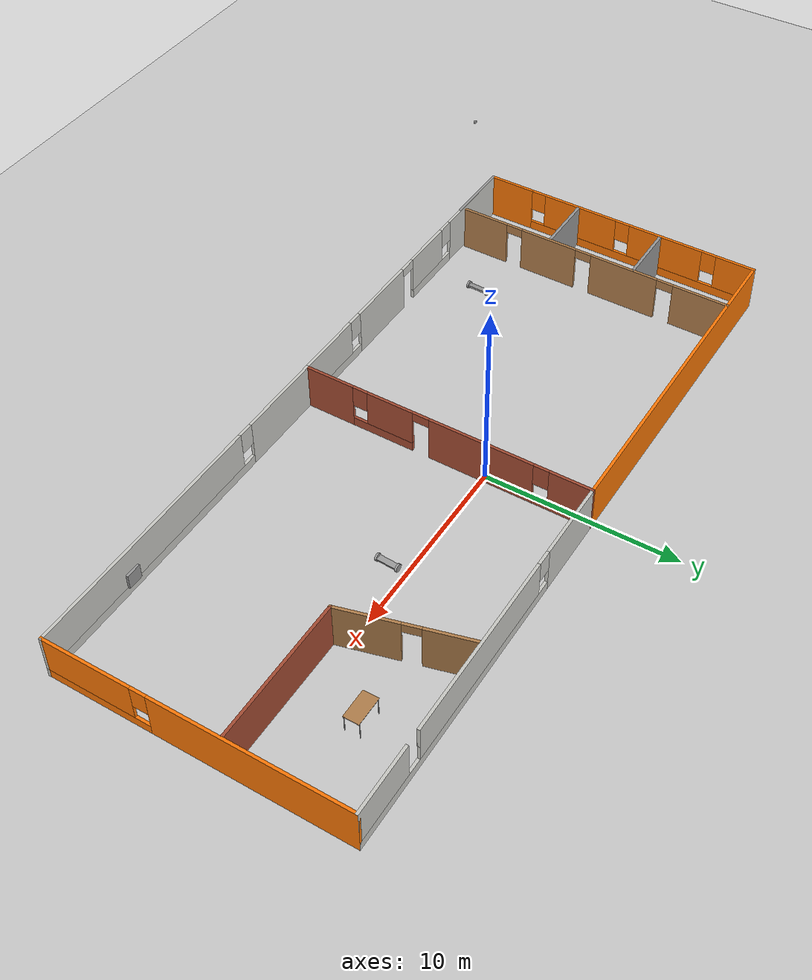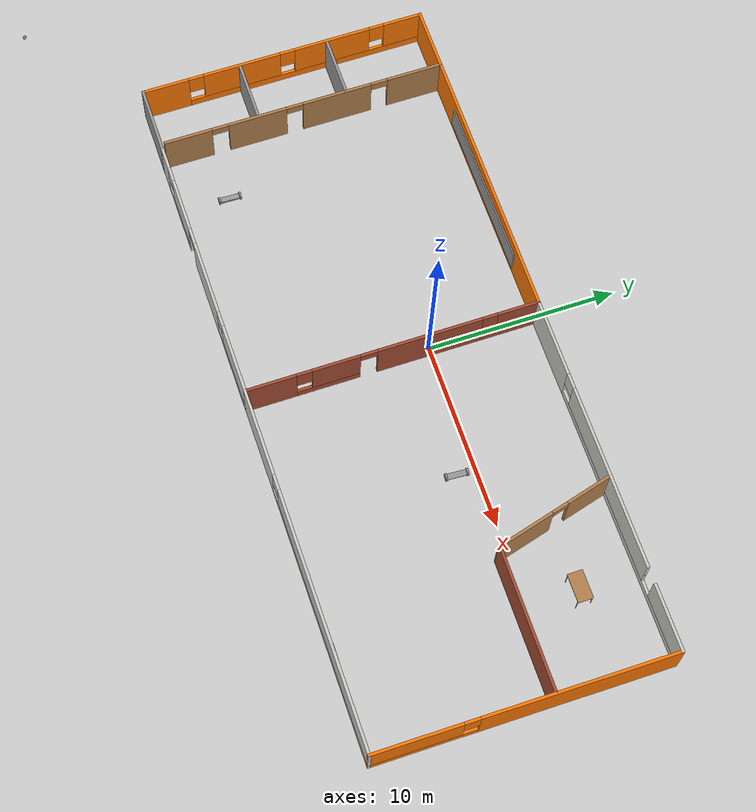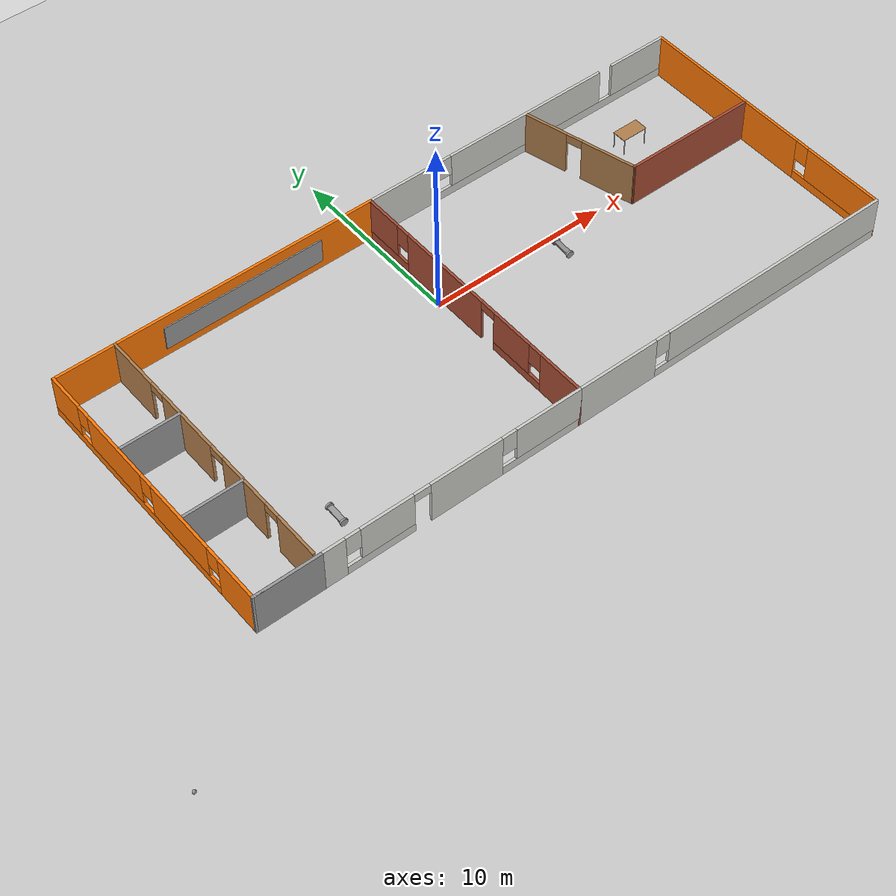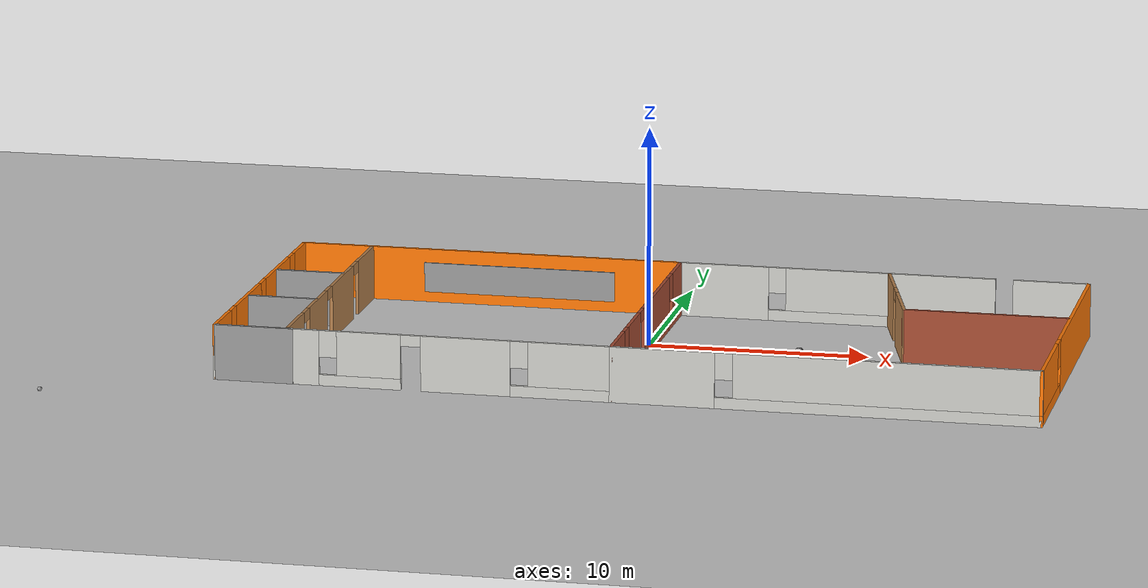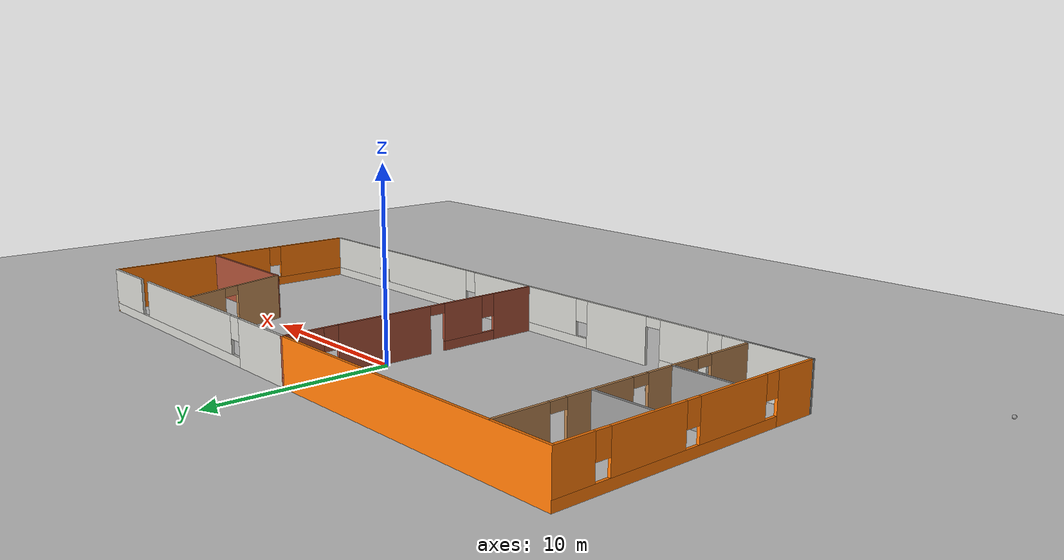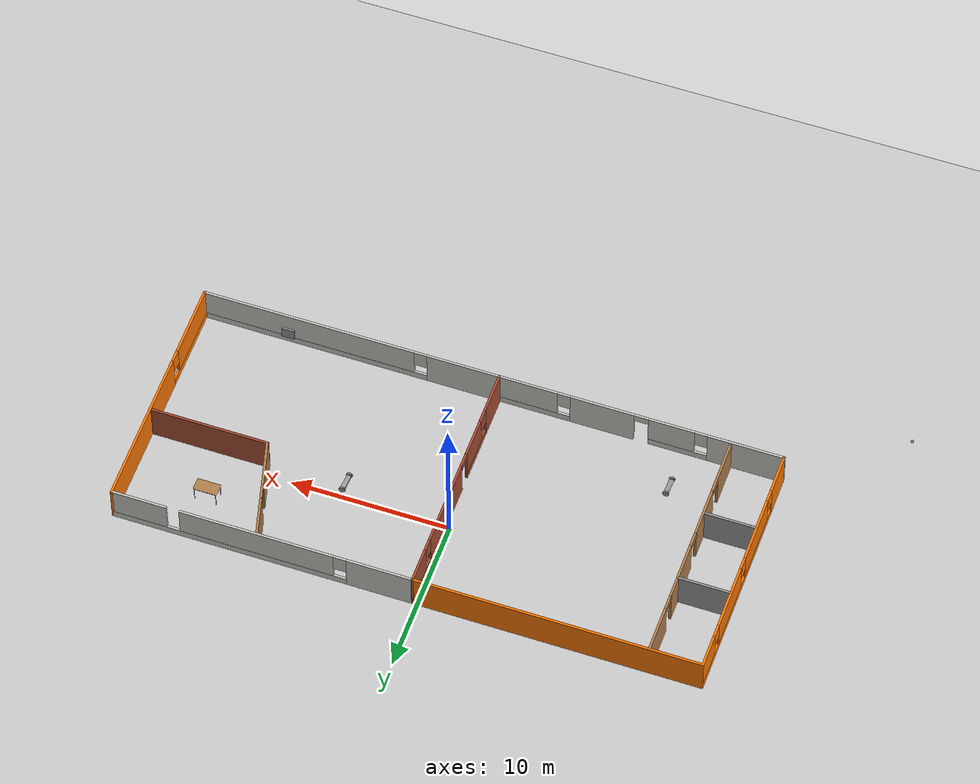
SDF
<sdf version="1.7">
 <world name="AvanadeOffice.world">
  <light name="sun" type="directional">
   <pose>0 0 10 0 -0 0</pose>
   <diffuse>0.8 0.8 0.8 1</diffuse>
   <specular>0.2 0.2 0.2 1</specular>
   <attenuation>
    <range>1000</range>
    <constant>0.9</constant>
    <linear>0.01</linear>
    <quadratic>0.001</quadratic>
   </attenuation>
   <direction>-0.5 0.1 -0.9</direction>
   <spot><inner_angle>0</inner_angle><outer_angle>0</outer_angle><falloff>0</falloff></spot>
  </light>
  <model name="ground_plane">
   <static>1</static>
   <link name="link">
    <collision name="collision">
     <geometry><plane><normal>0 0 1</normal><size>100 100</size></plane></geometry>
     <surface>
      <contact><collide_bitmask>65535</collide_bitmask></contact>
      <friction><ode><mu>100</mu><mu2>50</mu2></ode></friction>
     </surface>
    </collision>
    <visual name="visual">
     <cast_shadows>0</cast_shadows>
     <geometry><plane><normal>0 0 1</normal><size>100 100</size></plane></geometry>
     <material>
      <script><uri>file://media/materials/scripts/gazebo.material</uri><name>Gazebo/Grey</name></script>
     </material>
    </visual>
   </link>
  </model>
  <gravity>0 0 -9.8</gravity>
  <magnetic_field>6e-06 2.3e-05 -4.2e-05</magnetic_field>
  <atmosphere type="adiabatic"/>
  <physics type="ode">
   <max_step_size>0.001</max_step_size>
   <real_time_factor>1</real_time_factor>
   <real_time_update_rate>1000</real_time_update_rate>
  </physics>
  <scene><ambient>0.4 0.4 0.4 1</ambient><background>0.7 0.7 0.7 1</background><shadows>1</shadows></scene>
  <spherical_coordinates>
   <surface_model>EARTH_WGS84</surface_model>
   <latitude_deg>0</latitude_deg>
   <longitude_deg>0</longitude_deg>
   <elevation>0</elevation>
   <heading_deg>0</heading_deg>
  </spherical_coordinates>
  <model name="AvanadeOffice">
   <pose>0.7974 -2.0907 0 0 -0 0</pose>
   <link name="Wall_0">
    <pose>-18.3499 0.00463 0 0 -0 1.5708</pose>
    <visual name="Wall_0_Visual_0">
     <pose>-6.47246 0 1.25 0 -0 0</pose>
     <geometry><box><size>2.55507 0.15 2.5</size></box></geometry>
     <material>
      <script><uri>file://media/materials/scripts/gazebo.material</uri><name>Gazebo/Grey</name></script>
      <ambient>0.996078 0.47451 0.0196078 1</ambient>
     </material>
     <meta><layer>0</layer></meta>
    </visual>
    <collision name="Wall_0_Collision_0">
     <geometry><box><size>2.55507 0.15 2.5</size></box></geometry>
     <pose>-6.47246 0 1.25 0 -0 0</pose>
    </collision>
    <visual name="Wall_0_Visual_1">
     <pose>1.27754 0 0.25 0 -0 0</pose>
     <geometry><box><size>12.9449 0.15 0.5</size></box></geometry>
     <material>
      <script><uri>file://media/materials/scripts/gazebo.material</uri><name>Gazebo/Grey</name></script>
      <ambient>0.996078 0.47451 0.0196078 1</ambient>
     </material>
     <meta><layer>0</layer></meta>
    </visual>
    <collision name="Wall_0_Collision_1">
     <geometry><box><size>12.9449 0.15 0.5</size></box></geometry>
     <pose>1.27754 0 0.25 0 -0 0</pose>
    </collision>
    <visual name="Wall_0_Visual_2">
     <pose>-2.28031 0 1.5 0 -0 0</pose>
     <geometry><box><size>4.22924 0.15 2</size></box></geometry>
     <material>
      <script><uri>file://media/materials/scripts/gazebo.material</uri><name>Gazebo/Grey</name></script>
      <ambient>0.996078 0.47451 0.0196078 1</ambient>
     </material>
     <meta><layer>0</layer></meta>
    </visual>
    <collision name="Wall_0_Collision_2">
     <geometry><box><size>4.22924 0.15 2</size></box></geometry>
     <pose>-2.28031 0 1.5 0 -0 0</pose>
    </collision>
    <visual name="Wall_0_Visual_3">
     <pose>2.72217 0 1.5 0 -0 0</pose>
     <geometry><box><size>4.17573 0.15 2</size></box></geometry>
     <material>
      <script><uri>file://media/materials/scripts/gazebo.material</uri><name>Gazebo/Grey</name></script>
      <ambient>0.996078 0.47451 0.0196078 1</ambient>
     </material>
     <meta><layer>0</layer></meta>
    </visual>
    <collision name="Wall_0_Collision_3">
     <geometry><box><size>4.17573 0.15 2</size></box></geometry>
     <pose>2.72217 0 1.5 0 -0 0</pose>
    </collision>
    <visual name="Wall_0_Visual_4">
     <pose>6.68002 0 1.5 0 -0 0</pose>
     <geometry><box><size>2.13996 0.15 2</size></box></geometry>
     <material>
      <script><uri>file://media/materials/scripts/gazebo.material</uri><name>Gazebo/Grey</name></script>
      <ambient>0.996078 0.47451 0.0196078 1</ambient>
     </material>
     <meta><layer>0</layer></meta>
    </visual>
    <collision name="Wall_0_Collision_4">
     <geometry><box><size>2.13996 0.15 2</size></box></geometry>
     <pose>6.68002 0 1.5 0 -0 0</pose>
    </collision>
    <visual name="Wall_0_Visual_5">
     <pose>-4.79493 0 1.9 0 -0 0</pose>
     <geometry><box><size>0.8 0.15 1.2</size></box></geometry>
     <material>
      <script><uri>file://media/materials/scripts/gazebo.material</uri><name>Gazebo/Grey</name></script>
      <ambient>0.996078 0.47451 0.0196078 1</ambient>
     </material>
     <meta><layer>0</layer></meta>
    </visual>
    <collision name="Wall_0_Collision_5">
     <geometry><box><size>0.8 0.15 1.2</size></box></geometry>
     <pose>-4.79493 0 1.9 0 -0 0</pose>
    </collision>
    <visual name="Wall_0_Visual_6">
     <pose>0.234304 0 1.9 0 -0 0</pose>
     <geometry><box><size>0.8 0.15 1.2</size></box></geometry>
     <material>
      <script><uri>file://media/materials/scripts/gazebo.material</uri><name>Gazebo/Grey</name></script>
      <ambient>0.996078 0.47451 0.0196078 1</ambient>
     </material>
     <meta><layer>0</layer></meta>
    </visual>
    <collision name="Wall_0_Collision_6">
     <geometry><box><size>0.8 0.15 1.2</size></box></geometry>
     <pose>0.234304 0 1.9 0 -0 0</pose>
    </collision>
    <visual name="Wall_0_Visual_7">
     <pose>5.21004 0 1.9 0 -0 0</pose>
     <geometry><box><size>0.8 0.15 1.2</size></box></geometry>
     <material>
      <script><uri>file://media/materials/scripts/gazebo.material</uri><name>Gazebo/Grey</name></script>
      <ambient>0.996078 0.47451 0.0196078 1</ambient>
     </material>
     <meta><layer>0</layer></meta>
    </visual>
    <collision name="Wall_0_Collision_7">
     <geometry><box><size>0.8 0.15 1.2</size></box></geometry>
     <pose>5.21004 0 1.9 0 -0 0</pose>
    </collision>
   </link>
   <link name="Wall_22">
    <pose>-15.0762 0.125782 0 0 -0 -1.5708</pose>
    <visual name="Wall_22_Visual_0">
     <pose>-6.10042 0 1.25 0 -0 0</pose>
     <geometry><box><size>3.04916 0.15 2.5</size></box></geometry>
     <material>
      <script><uri>file://media/materials/scripts/gazebo.material</uri><name>Gazebo/Wood</name></script>
      <ambient>1 1 1 1</ambient>
     </material>
     <meta><layer>0</layer></meta>
    </visual>
    <collision name="Wall_22_Collision_0">
     <geometry><box><size>3.04916 0.15 2.5</size></box></geometry>
     <pose>-6.10042 0 1.25 0 -0 0</pose>
    </collision>
    <visual name="Wall_22_Visual_1">
     <pose>-1.79848 0 1.25 0 -0 0</pose>
     <geometry><box><size>3.75472 0.15 2.5</size></box></geometry>
     <material>
      <script><uri>file://media/materials/scripts/gazebo.material</uri><name>Gazebo/Wood</name></script>
      <ambient>1 1 1 1</ambient>
     </material>
     <meta><layer>0</layer></meta>
    </visual>
    <collision name="Wall_22_Collision_1">
     <geometry><box><size>3.75472 0.15 2.5</size></box></geometry>
     <pose>-1.79848 0 1.25 0 -0 0</pose>
    </collision>
    <visual name="Wall_22_Visual_2">
     <pose>2.56197 0 1.25 0 -0 0</pose>
     <geometry><box><size>3.16619 0.15 2.5</size></box></geometry>
     <material>
      <script><uri>file://media/materials/scripts/gazebo.material</uri><name>Gazebo/Wood</name></script>
      <ambient>1 1 1 1</ambient>
     </material>
     <meta><layer>0</layer></meta>
    </visual>
    <collision name="Wall_22_Collision_2">
     <geometry><box><size>3.16619 0.15 2.5</size></box></geometry>
     <pose>2.56197 0 1.25 0 -0 0</pose>
    </collision>
    <visual name="Wall_22_Visual_3">
     <pose>6.33503 0 1.25 0 -0 0</pose>
     <geometry><box><size>2.57993 0.15 2.5</size></box></geometry>
     <material>
      <script><uri>file://media/materials/scripts/gazebo.material</uri><name>Gazebo/Wood</name></script>
      <ambient>1 1 1 1</ambient>
     </material>
     <meta><layer>0</layer></meta>
    </visual>
    <collision name="Wall_22_Collision_3">
     <geometry><box><size>2.57993 0.15 2.5</size></box></geometry>
     <pose>6.33503 0 1.25 0 -0 0</pose>
    </collision>
    <visual name="Wall_22_Visual_4">
     <pose>-4.12584 0 2.25 0 -0 0</pose>
     <geometry><box><size>0.9 0.15 0.5</size></box></geometry>
     <material>
      <script><uri>file://media/materials/scripts/gazebo.material</uri><name>Gazebo/Wood</name></script>
      <ambient>1 1 1 1</ambient>
     </material>
     <meta><layer>0</layer></meta>
    </visual>
    <collision name="Wall_22_Collision_4">
     <geometry><box><size>0.9 0.15 0.5</size></box></geometry>
     <pose>-4.12584 0 2.25 0 -0 0</pose>
    </collision>
    <visual name="Wall_22_Visual_5">
     <pose>0.528878 0 2.25 0 -0 0</pose>
     <geometry><box><size>0.9 0.15 0.5</size></box></geometry>
     <material>
      <script><uri>file://media/materials/scripts/gazebo.material</uri><name>Gazebo/Wood</name></script>
      <ambient>1 1 1 1</ambient>
     </material>
     <meta><layer>0</layer></meta>
    </visual>
    <collision name="Wall_22_Collision_5">
     <geometry><box><size>0.9 0.15 0.5</size></box></geometry>
     <pose>0.528878 0 2.25 0 -0 0</pose>
    </collision>
    <visual name="Wall_22_Visual_6">
     <pose>4.59507 0 2.25 0 -0 0</pose>
     <geometry><box><size>0.9 0.15 0.5</size></box></geometry>
     <material>
      <script><uri>file://media/materials/scripts/gazebo.material</uri><name>Gazebo/Wood</name></script>
      <ambient>1 1 1 1</ambient>
     </material>
     <meta><layer>0</layer></meta>
    </visual>
    <collision name="Wall_22_Collision_6">
     <geometry><box><size>0.9 0.15 0.5</size></box></geometry>
     <pose>4.59507 0 2.25 0 -0 0</pose>
    </collision>
   </link>
   <link name="Wall_24">
    <collision name="Wall_24_Collision">
     <geometry><box><size>3.25 0.15 2.5</size></box></geometry>
     <pose>0 0 1.25 0 -0 0</pose>
    </collision>
    <visual name="Wall_24_Visual">
     <pose>0 0 1.25 0 -0 0</pose>
     <geometry><box><size>3.25 0.15 2.5</size></box></geometry>
     <material>
      <script><uri>file://media/materials/scripts/gazebo.material</uri><name>Gazebo/Grey</name></script>
      <ambient>1 1 1 1</ambient>
     </material>
     <meta><layer>0</layer></meta>
    </visual>
    <pose>-16.6829 2.43254 0 0 -0 0</pose>
   </link>
   <link name="Wall_26">
    <collision name="Wall_26_Collision">
     <geometry><box><size>3.25 0.15 2.5</size></box></geometry>
     <pose>0 0 1.25 0 -0 0</pose>
    </collision>
    <visual name="Wall_26_Visual">
     <pose>0 0 1.25 0 -0 0</pose>
     <geometry><box><size>3.25 0.15 2.5</size></box></geometry>
     <material>
      <script><uri>file://media/materials/scripts/gazebo.material</uri><name>Gazebo/Grey</name></script>
      <ambient>1 1 1 1</ambient>
     </material>
     <meta><layer>0</layer></meta>
    </visual>
    <pose>-16.6798 -2.38269 0 0 -0 3.14159</pose>
   </link>
   <link name="Wall_6">
    <collision name="Wall_6_Collision">
     <geometry><box><size>3.63768 0.15 2.5</size></box></geometry>
     <pose>0 0 1.25 0 -0 0</pose>
    </collision>
    <visual name="Wall_6_Visual">
     <pose>0 0 1.25 0 -0 0</pose>
     <geometry><box><size>3.63768 0.15 2.5</size></box></geometry>
     <material>
      <script><uri>file://media/materials/scripts/gazebo.material</uri><name>Gazebo/Grey</name></script>
      <ambient>1 1 1 1</ambient>
     </material>
     <meta><layer>0</layer></meta>
    </visual>
    <pose>-16.6061 -7.6749 0 0 -0 3.13899</pose>
   </link>
   <link name="Wall_66">
    <pose>8.9251 7.67963 0 0 -0 0</pose>
    <visual name="Wall_66_Visual_0">
     <pose>-7.39785 0 1.25 0 -0 0</pose>
     <geometry><box><size>4.20431 0.15 2.5</size></box></geometry>
     <material>
      <script><uri>file://media/materials/scripts/gazebo.material</uri><name>Gazebo/CeilingTiled</name></script>
      <ambient>0.996078 0.47451 0.0196078 1</ambient>
     </material>
     <meta><layer>0</layer></meta>
    </visual>
    <collision name="Wall_66_Collision_0">
     <geometry><box><size>4.20431 0.15 2.5</size></box></geometry>
     <pose>-7.39785 0 1.25 0 -0 0</pose>
    </collision>
    <visual name="Wall_66_Visual_1">
     <pose>2.10215 0 0.25 0 -0 0</pose>
     <geometry><box><size>14.7957 0.15 0.5</size></box></geometry>
     <material>
      <script><uri>file://media/materials/scripts/gazebo.material</uri><name>Gazebo/CeilingTiled</name></script>
      <ambient>0.996078 0.47451 0.0196078 1</ambient>
     </material>
     <meta><layer>0</layer></meta>
    </visual>
    <collision name="Wall_66_Collision_1">
     <geometry><box><size>14.7957 0.15 0.5</size></box></geometry>
     <pose>2.10215 0 0.25 0 -0 0</pose>
    </collision>
    <visual name="Wall_66_Visual_2">
     <pose>0.338247 0 1.5 0 -0 0</pose>
     <geometry><box><size>9.66788 0.15 2</size></box></geometry>
     <material>
      <script><uri>file://media/materials/scripts/gazebo.material</uri><name>Gazebo/CeilingTiled</name></script>
      <ambient>0.996078 0.47451 0.0196078 1</ambient>
     </material>
     <meta><layer>0</layer></meta>
    </visual>
    <collision name="Wall_66_Collision_2">
     <geometry><box><size>9.66788 0.15 2</size></box></geometry>
     <pose>0.338247 0 1.5 0 -0 0</pose>
    </collision>
    <visual name="Wall_66_Visual_3">
     <pose>7.73609 0 1.5 0 -0 0</pose>
     <geometry><box><size>3.52781 0.15 2</size></box></geometry>
     <material>
      <script><uri>file://media/materials/scripts/gazebo.material</uri><name>Gazebo/CeilingTiled</name></script>
      <ambient>0.996078 0.47451 0.0196078 1</ambient>
     </material>
     <meta><layer>0</layer></meta>
    </visual>
    <collision name="Wall_66_Collision_3">
     <geometry><box><size>3.52781 0.15 2</size></box></geometry>
     <pose>7.73609 0 1.5 0 -0 0</pose>
    </collision>
    <visual name="Wall_66_Visual_4">
     <pose>-4.89569 0 1.9 0 -0 0</pose>
     <geometry><box><size>0.8 0.15 1.2</size></box></geometry>
     <material>
      <script><uri>file://media/materials/scripts/gazebo.material</uri><name>Gazebo/CeilingTiled</name></script>
      <ambient>0.996078 0.47451 0.0196078 1</ambient>
     </material>
     <meta><layer>0</layer></meta>
    </visual>
    <collision name="Wall_66_Collision_4">
     <geometry><box><size>0.8 0.15 1.2</size></box></geometry>
     <pose>-4.89569 0 1.9 0 -0 0</pose>
    </collision>
    <visual name="Wall_66_Visual_5">
     <pose>5.17219 0 1.9 0 -0 0</pose>
     <geometry><box><size>0 0.15 1.2</size></box></geometry>
     <material>
      <script><uri>file://media/materials/scripts/gazebo.material</uri><name>Gazebo/CeilingTiled</name></script>
      <ambient>0.996078 0.47451 0.0196078 1</ambient>
     </material>
     <meta><layer>0</layer></meta>
    </visual>
    <collision name="Wall_66_Collision_5">
     <geometry><box><size>0 0.15 1.2</size></box></geometry>
     <pose>5.17219 0 1.9 0 -0 0</pose>
    </collision>
   </link>
   <link name="Wall_67">
    <pose>18.3501 0.00463 0 0 -0 -1.5708</pose>
    <visual name="Wall_67_Visual_0">
     <pose>-2.7356 0 1.25 0 -0 0</pose>
     <geometry><box><size>10.0288 0.15 2.5</size></box></geometry>
     <material>
      <script><uri>file://media/materials/scripts/gazebo.material</uri><name>Gazebo/Grey</name></script>
      <ambient>0.996078 0.47451 0.0196078 1</ambient>
     </material>
     <meta><layer>0</layer></meta>
    </visual>
    <collision name="Wall_67_Collision_0">
     <geometry><box><size>10.0288 0.15 2.5</size></box></geometry>
     <pose>-2.7356 0 1.25 0 -0 0</pose>
    </collision>
    <visual name="Wall_67_Visual_1">
     <pose>5.0144 0 0.25 0 -0 0</pose>
     <geometry><box><size>5.4712 0.15 0.5</size></box></geometry>
     <material>
      <script><uri>file://media/materials/scripts/gazebo.material</uri><name>Gazebo/Grey</name></script>
      <ambient>0.996078 0.47451 0.0196078 1</ambient>
     </material>
     <meta><layer>0</layer></meta>
    </visual>
    <collision name="Wall_67_Collision_1">
     <geometry><box><size>5.4712 0.15 0.5</size></box></geometry>
     <pose>5.0144 0 0.25 0 -0 0</pose>
    </collision>
    <visual name="Wall_67_Visual_2">
     <pose>5.4144 0 1.5 0 -0 0</pose>
     <geometry><box><size>4.6712 0.15 2</size></box></geometry>
     <material>
      <script><uri>file://media/materials/scripts/gazebo.material</uri><name>Gazebo/Grey</name></script>
      <ambient>0.996078 0.47451 0.0196078 1</ambient>
     </material>
     <meta><layer>0</layer></meta>
    </visual>
    <collision name="Wall_67_Collision_2">
     <geometry><box><size>4.6712 0.15 2</size></box></geometry>
     <pose>5.4144 0 1.5 0 -0 0</pose>
    </collision>
    <visual name="Wall_67_Visual_3">
     <pose>2.6788 0 1.9 0 -0 0</pose>
     <geometry><box><size>0.8 0.15 1.2</size></box></geometry>
     <material>
      <script><uri>file://media/materials/scripts/gazebo.material</uri><name>Gazebo/Grey</name></script>
      <ambient>0.996078 0.47451 0.0196078 1</ambient>
     </material>
     <meta><layer>0</layer></meta>
    </visual>
    <collision name="Wall_67_Collision_3">
     <geometry><box><size>0.8 0.15 1.2</size></box></geometry>
     <pose>2.6788 0 1.9 0 -0 0</pose>
    </collision>
   </link>
   <link name="Wall_7">
    <pose>-9.4249 -7.67037 0 0 -0 0</pose>
    <visual name="Wall_7_Visual_0">
     <pose>-6.58938 0 1.25 0 -0 0</pose>
     <geometry><box><size>4.82124 0.15 2.5</size></box></geometry>
     <material>
      <script><uri>file://media/materials/scripts/gazebo.material</uri><name>Gazebo/CeilingTiled</name></script>
      <ambient>0.996078 0.47451 0.0196078 1</ambient>
     </material>
     <meta><layer>0</layer></meta>
    </visual>
    <collision name="Wall_7_Collision_0">
     <geometry><box><size>4.82124 0.15 2.5</size></box></geometry>
     <pose>-6.58938 0 1.25 0 -0 0</pose>
    </collision>
    <visual name="Wall_7_Visual_1">
     <pose>2.42578 0 1.25 0 -0 0</pose>
     <geometry><box><size>4.01873 0.15 2.5</size></box></geometry>
     <material>
      <script><uri>file://media/materials/scripts/gazebo.material</uri><name>Gazebo/CeilingTiled</name></script>
      <ambient>0.996078 0.47451 0.0196078 1</ambient>
     </material>
     <meta><layer>0</layer></meta>
    </visual>
    <collision name="Wall_7_Collision_1">
     <geometry><box><size>4.01873 0.15 2.5</size></box></geometry>
     <pose>2.42578 0 1.25 0 -0 0</pose>
    </collision>
    <visual name="Wall_7_Visual_2">
     <pose>-2.33117 0 0.25 0 -0 0</pose>
     <geometry><box><size>3.69517 0.15 0.5</size></box></geometry>
     <material>
      <script><uri>file://media/materials/scripts/gazebo.material</uri><name>Gazebo/CeilingTiled</name></script>
      <ambient>0.996078 0.47451 0.0196078 1</ambient>
     </material>
     <meta><layer>0</layer></meta>
    </visual>
    <collision name="Wall_7_Collision_2">
     <geometry><box><size>3.69517 0.15 0.5</size></box></geometry>
     <pose>-2.33117 0 0.25 0 -0 0</pose>
    </collision>
    <visual name="Wall_7_Visual_3">
     <pose>6.71757 0 0.25 0 -0 0</pose>
     <geometry><box><size>4.56486 0.15 0.5</size></box></geometry>
     <material>
      <script><uri>file://media/materials/scripts/gazebo.material</uri><name>Gazebo/CeilingTiled</name></script>
      <ambient>0.996078 0.47451 0.0196078 1</ambient>
     </material>
     <meta><layer>0</layer></meta>
    </visual>
    <collision name="Wall_7_Collision_3">
     <geometry><box><size>4.56486 0.15 0.5</size></box></geometry>
     <pose>6.71757 0 0.25 0 -0 0</pose>
    </collision>
    <visual name="Wall_7_Visual_4">
     <pose>-1.93117 0 1.5 0 -0 0</pose>
     <geometry><box><size>2.89518 0.15 2</size></box></geometry>
     <material>
      <script><uri>file://media/materials/scripts/gazebo.material</uri><name>Gazebo/CeilingTiled</name></script>
      <ambient>0.996078 0.47451 0.0196078 1</ambient>
     </material>
     <meta><layer>0</layer></meta>
    </visual>
    <collision name="Wall_7_Collision_4">
     <geometry><box><size>2.89518 0.15 2</size></box></geometry>
     <pose>-1.93117 0 1.5 0 -0 0</pose>
    </collision>
    <visual name="Wall_7_Visual_5">
     <pose>-1.93117 0 1.5 0 -0 0</pose>
     <geometry><box><size>2.89518 0.15 2</size></box></geometry>
     <material>
      <script><uri>file://media/materials/scripts/gazebo.material</uri><name>Gazebo/CeilingTiled</name></script>
      <ambient>0.996078 0.47451 0.0196078 1</ambient>
     </material>
     <meta><layer>0</layer></meta>
    </visual>
    <collision name="Wall_7_Collision_5">
     <geometry><box><size>2.89518 0.15 2</size></box></geometry>
     <pose>-1.93117 0 1.5 0 -0 0</pose>
    </collision>
    <visual name="Wall_7_Visual_6">
     <pose>7.11757 0 1.5 0 -0 0</pose>
     <geometry><box><size>3.76486 0.15 2</size></box></geometry>
     <material>
      <script><uri>file://media/materials/scripts/gazebo.material</uri><name>Gazebo/CeilingTiled</name></script>
      <ambient>0.996078 0.47451 0.0196078 1</ambient>
     </material>
     <meta><layer>0</layer></meta>
    </visual>
    <collision name="Wall_7_Collision_6">
     <geometry><box><size>3.76486 0.15 2</size></box></geometry>
     <pose>7.11757 0 1.5 0 -0 0</pose>
    </collision>
    <visual name="Wall_7_Visual_7">
     <pose>-3.77876 0 1.9 0 -0 0</pose>
     <geometry><box><size>0.8 0.15 1.2</size></box></geometry>
     <material>
      <script><uri>file://media/materials/scripts/gazebo.material</uri><name>Gazebo/CeilingTiled</name></script>
      <ambient>0.996078 0.47451 0.0196078 1</ambient>
     </material>
     <meta><layer>0</layer></meta>
    </visual>
    <collision name="Wall_7_Collision_7">
     <geometry><box><size>0.8 0.15 1.2</size></box></geometry>
     <pose>-3.77876 0 1.9 0 -0 0</pose>
    </collision>
    <visual name="Wall_7_Visual_8">
     <pose>4.83514 0 1.9 0 -0 0</pose>
     <geometry><box><size>0.8 0.15 1.2</size></box></geometry>
     <material>
      <script><uri>file://media/materials/scripts/gazebo.material</uri><name>Gazebo/CeilingTiled</name></script>
      <ambient>0.996078 0.47451 0.0196078 1</ambient>
     </material>
     <meta><layer>0</layer></meta>
    </visual>
    <collision name="Wall_7_Collision_8">
     <geometry><box><size>0.8 0.15 1.2</size></box></geometry>
     <pose>4.83514 0 1.9 0 -0 0</pose>
    </collision>
    <visual name="Wall_7_Visual_9">
     <pose>-0.033583 0 2.25 0 -0 0</pose>
     <geometry><box><size>0.9 0.15 0.5</size></box></geometry>
     <material>
      <script><uri>file://media/materials/scripts/gazebo.material</uri><name>Gazebo/CeilingTiled</name></script>
      <ambient>0.996078 0.47451 0.0196078 1</ambient>
     </material>
     <meta><layer>0</layer></meta>
    </visual>
    <collision name="Wall_7_Collision_9">
     <geometry><box><size>0.9 0.15 0.5</size></box></geometry>
     <pose>-0.033583 0 2.25 0 -0 0</pose>
    </collision>
    <visual name="Wall_7_Visual_10">
     <pose>-0.033583 0 2.25 0 -0 0</pose>
     <geometry><box><size>0.9 0.15 0.5</size></box></geometry>
     <material>
      <script><uri>file://media/materials/scripts/gazebo.material</uri><name>Gazebo/CeilingTiled</name></script>
      <ambient>0.996078 0.47451 0.0196078 1</ambient>
     </material>
     <meta><layer>0</layer></meta>
    </visual>
    <collision name="Wall_7_Collision_10">
     <geometry><box><size>0.9 0.15 0.5</size></box></geometry>
     <pose>-0.033583 0 2.25 0 -0 0</pose>
    </collision>
   </link>
   <link name="Wall_71">
    <pose>8.9251 -7.67037 0 0 -0 0</pose>
    <visual name="Wall_71_Visual_0">
     <pose>-7.16523 0 1.25 0 -0 0</pose>
     <geometry><box><size>4.66955 0.15 2.5</size></box></geometry>
     <material>
      <script><uri>file://media/materials/scripts/gazebo.material</uri><name>Gazebo/CeilingTiled</name></script>
      <ambient>0.996078 0.47451 0.0196078 1</ambient>
     </material>
     <meta><layer>0</layer></meta>
    </visual>
    <collision name="Wall_71_Collision_0">
     <geometry><box><size>4.66955 0.15 2.5</size></box></geometry>
     <pose>-7.16523 0 1.25 0 -0 0</pose>
    </collision>
    <visual name="Wall_71_Visual_1">
     <pose>2.33477 0 0.25 0 -0 0</pose>
     <geometry><box><size>14.3305 0.15 0.5</size></box></geometry>
     <material>
      <script><uri>file://media/materials/scripts/gazebo.material</uri><name>Gazebo/CeilingTiled</name></script>
      <ambient>0.996078 0.47451 0.0196078 1</ambient>
     </material>
     <meta><layer>0</layer></meta>
    </visual>
    <collision name="Wall_71_Collision_1">
     <geometry><box><size>14.3305 0.15 0.5</size></box></geometry>
     <pose>2.33477 0 0.25 0 -0 0</pose>
    </collision>
    <visual name="Wall_71_Visual_2">
     <pose>2.73477 0 1.5 0 -0 0</pose>
     <geometry><box><size>13.5305 0.15 2</size></box></geometry>
     <material>
      <script><uri>file://media/materials/scripts/gazebo.material</uri><name>Gazebo/CeilingTiled</name></script>
      <ambient>0.996078 0.47451 0.0196078 1</ambient>
     </material>
     <meta><layer>0</layer></meta>
    </visual>
    <collision name="Wall_71_Collision_2">
     <geometry><box><size>13.5305 0.15 2</size></box></geometry>
     <pose>2.73477 0 1.5 0 -0 0</pose>
    </collision>
    <visual name="Wall_71_Visual_3">
     <pose>-4.43045 0 1.9 0 -0 0</pose>
     <geometry><box><size>0.8 0.15 1.2</size></box></geometry>
     <material>
      <script><uri>file://media/materials/scripts/gazebo.material</uri><name>Gazebo/CeilingTiled</name></script>
      <ambient>0.996078 0.47451 0.0196078 1</ambient>
     </material>
     <meta><layer>0</layer></meta>
    </visual>
    <collision name="Wall_71_Collision_3">
     <geometry><box><size>0.8 0.15 1.2</size></box></geometry>
     <pose>-4.43045 0 1.9 0 -0 0</pose>
    </collision>
   </link>
   <link name="Wall_73">
    <pose>10.0801 4.4757 0 0 -0 -1.309</pose>
    <visual name="Wall_73_Visual_0">
     <pose>-2.0215 0 1.25 0 -0 0</pose>
     <geometry><box><size>2.457 0.15 2.5</size></box></geometry>
     <material>
      <script><uri>file://media/materials/scripts/gazebo.material</uri><name>Gazebo/Wood</name></script>
      <ambient>1 1 1 1</ambient>
     </material>
     <meta><layer>0</layer></meta>
    </visual>
    <collision name="Wall_73_Collision_0">
     <geometry><box><size>2.457 0.15 2.5</size></box></geometry>
     <pose>-2.0215 0 1.25 0 -0 0</pose>
    </collision>
    <visual name="Wall_73_Visual_1">
     <pose>1.6785 0 1.25 0 -0 0</pose>
     <geometry><box><size>3.143 0.15 2.5</size></box></geometry>
     <material>
      <script><uri>file://media/materials/scripts/gazebo.material</uri><name>Gazebo/Wood</name></script>
      <ambient>1 1 1 1</ambient>
     </material>
     <meta><layer>0</layer></meta>
    </visual>
    <collision name="Wall_73_Collision_1">
     <geometry><box><size>3.143 0.15 2.5</size></box></geometry>
     <pose>1.6785 0 1.25 0 -0 0</pose>
    </collision>
    <visual name="Wall_73_Visual_2">
     <pose>-0.343001 0 2.25 0 -0 0</pose>
     <geometry><box><size>0.9 0.15 0.5</size></box></geometry>
     <material>
      <script><uri>file://media/materials/scripts/gazebo.material</uri><name>Gazebo/Wood</name></script>
      <ambient>1 1 1 1</ambient>
     </material>
     <meta><layer>0</layer></meta>
    </visual>
    <collision name="Wall_73_Collision_2">
     <geometry><box><size>0.9 0.15 0.5</size></box></geometry>
     <pose>-0.343001 0 2.25 0 -0 0</pose>
    </collision>
   </link>
   <link name="Wall_74">
    <collision name="Wall_74_Collision">
     <geometry><box><size>7.5 0.15 2.5</size></box></geometry>
     <pose>0 0 1.25 0 -0 0</pose>
    </collision>
    <visual name="Wall_74_Visual">
     <pose>0 0 1.25 0 -0 0</pose>
     <geometry><box><size>7.5 0.15 2.5</size></box></geometry>
     <material>
      <script><uri>file://media/materials/scripts/gazebo.material</uri><name>Gazebo/Bricks</name></script>
      <ambient>1 1 1 1</ambient>
     </material>
     <meta><layer>0</layer></meta>
    </visual>
    <pose>14.5769 1.40888 0 0 -0 0</pose>
   </link>
   <link name="Wall_8">
    <pose>-0.499903 0.00463 0 0 -0 1.5708</pose>
    <visual name="Wall_8_Visual_0">
     <pose>-6.39221 0 1.25 0 -0 0</pose>
     <geometry><box><size>2.71558 0.15 2.5</size></box></geometry>
     <material>
      <script><uri>file://media/materials/scripts/gazebo.material</uri><name>Gazebo/Bricks</name></script>
      <ambient>1 1 1 1</ambient>
     </material>
     <meta><layer>0</layer></meta>
    </visual>
    <collision name="Wall_8_Collision_0">
     <geometry><box><size>2.71558 0.15 2.5</size></box></geometry>
     <pose>-6.39221 0 1.25 0 -0 0</pose>
    </collision>
    <visual name="Wall_8_Visual_1">
     <pose>1.94463 0 1.25 0 -0 0</pose>
     <geometry><box><size>5.5168 0.15 2.5</size></box></geometry>
     <material>
      <script><uri>file://media/materials/scripts/gazebo.material</uri><name>Gazebo/Bricks</name></script>
      <ambient>1 1 1 1</ambient>
     </material>
     <meta><layer>0</layer></meta>
    </visual>
    <collision name="Wall_8_Collision_1">
     <geometry><box><size>5.5168 0.15 2.5</size></box></geometry>
     <pose>1.94463 0 1.25 0 -0 0</pose>
    </collision>
    <visual name="Wall_8_Visual_2">
     <pose>-3.37409 0 0.25 0 -0 0</pose>
     <geometry><box><size>3.32066 0.15 0.5</size></box></geometry>
     <material>
      <script><uri>file://media/materials/scripts/gazebo.material</uri><name>Gazebo/Bricks</name></script>
      <ambient>1 1 1 1</ambient>
     </material>
     <meta><layer>0</layer></meta>
    </visual>
    <collision name="Wall_8_Collision_2">
     <geometry><box><size>3.32066 0.15 0.5</size></box></geometry>
     <pose>-3.37409 0 0.25 0 -0 0</pose>
    </collision>
    <visual name="Wall_8_Visual_3">
     <pose>6.22652 0 0.25 0 -0 0</pose>
     <geometry><box><size>3.04697 0.15 0.5</size></box></geometry>
     <material>
      <script><uri>file://media/materials/scripts/gazebo.material</uri><name>Gazebo/Bricks</name></script>
      <ambient>1 1 1 1</ambient>
     </material>
     <meta><layer>0</layer></meta>
    </visual>
    <collision name="Wall_8_Collision_3">
     <geometry><box><size>3.04697 0.15 0.5</size></box></geometry>
     <pose>6.22652 0 0.25 0 -0 0</pose>
    </collision>
    <visual name="Wall_8_Visual_4">
     <pose>-2.97409 0 1.5 0 -0 0</pose>
     <geometry><box><size>2.52066 0.15 2</size></box></geometry>
     <material>
      <script><uri>file://media/materials/scripts/gazebo.material</uri><name>Gazebo/Bricks</name></script>
      <ambient>1 1 1 1</ambient>
     </material>
     <meta><layer>0</layer></meta>
    </visual>
    <collision name="Wall_8_Collision_4">
     <geometry><box><size>2.52066 0.15 2</size></box></geometry>
     <pose>-2.97409 0 1.5 0 -0 0</pose>
    </collision>
    <visual name="Wall_8_Visual_5">
     <pose>-2.97409 0 1.5 0 -0 0</pose>
     <geometry><box><size>2.52066 0.15 2</size></box></geometry>
     <material>
      <script><uri>file://media/materials/scripts/gazebo.material</uri><name>Gazebo/Bricks</name></script>
      <ambient>1 1 1 1</ambient>
     </material>
     <meta><layer>0</layer></meta>
    </visual>
    <collision name="Wall_8_Collision_5">
     <geometry><box><size>2.52066 0.15 2</size></box></geometry>
     <pose>-2.97409 0 1.5 0 -0 0</pose>
    </collision>
    <visual name="Wall_8_Visual_6">
     <pose>6.62652 0 1.5 0 -0 0</pose>
     <geometry><box><size>2.24697 0.15 2</size></box></geometry>
     <material>
      <script><uri>file://media/materials/scripts/gazebo.material</uri><name>Gazebo/Bricks</name></script>
      <ambient>1 1 1 1</ambient>
     </material>
     <meta><layer>0</layer></meta>
    </visual>
    <collision name="Wall_8_Collision_6">
     <geometry><box><size>2.24697 0.15 2</size></box></geometry>
     <pose>6.62652 0 1.5 0 -0 0</pose>
    </collision>
    <visual name="Wall_8_Visual_7">
     <pose>-4.63442 0 1.9 0 -0 0</pose>
     <geometry><box><size>0.8 0.15 1.2</size></box></geometry>
     <material>
      <script><uri>file://media/materials/scripts/gazebo.material</uri><name>Gazebo/Bricks</name></script>
      <ambient>1 1 1 1</ambient>
     </material>
     <meta><layer>0</layer></meta>
    </visual>
    <collision name="Wall_8_Collision_7">
     <geometry><box><size>0.8 0.15 1.2</size></box></geometry>
     <pose>-4.63442 0 1.9 0 -0 0</pose>
    </collision>
    <visual name="Wall_8_Visual_8">
     <pose>5.10303 0 1.9 0 -0 0</pose>
     <geometry><box><size>0.8 0.15 1.2</size></box></geometry>
     <material>
      <script><uri>file://media/materials/scripts/gazebo.material</uri><name>Gazebo/Bricks</name></script>
      <ambient>1 1 1 1</ambient>
     </material>
     <meta><layer>0</layer></meta>
    </visual>
    <collision name="Wall_8_Collision_8">
     <geometry><box><size>0.8 0.15 1.2</size></box></geometry>
     <pose>5.10303 0 1.9 0 -0 0</pose>
    </collision>
    <visual name="Wall_8_Visual_9">
     <pose>-1.26377 0 2.25 0 -0 0</pose>
     <geometry><box><size>0.9 0.15 0.5</size></box></geometry>
     <material>
      <script><uri>file://media/materials/scripts/gazebo.material</uri><name>Gazebo/Bricks</name></script>
      <ambient>1 1 1 1</ambient>
     </material>
     <meta><layer>0</layer></meta>
    </visual>
    <collision name="Wall_8_Collision_9">
     <geometry><box><size>0.9 0.15 0.5</size></box></geometry>
     <pose>-1.26377 0 2.25 0 -0 0</pose>
    </collision>
    <visual name="Wall_8_Visual_10">
     <pose>-1.26377 0 2.25 0 -0 0</pose>
     <geometry><box><size>0.9 0.15 0.5</size></box></geometry>
     <material>
      <script><uri>file://media/materials/scripts/gazebo.material</uri><name>Gazebo/Bricks</name></script>
      <ambient>1 1 1 1</ambient>
     </material>
     <meta><layer>0</layer></meta>
    </visual>
    <collision name="Wall_8_Collision_10">
     <geometry><box><size>0.9 0.15 0.5</size></box></geometry>
     <pose>-1.26377 0 2.25 0 -0 0</pose>
    </collision>
   </link>
   <link name="Wall_9">
    <collision name="Wall_9_Collision">
     <geometry><box><size>18 0.15 2.5</size></box></geometry>
     <pose>0 0 1.25 0 -0 0</pose>
    </collision>
    <visual name="Wall_9_Visual">
     <pose>0 0 1.25 0 -0 0</pose>
     <geometry><box><size>18 0.15 2.5</size></box></geometry>
     <material>
      <script><uri>file://media/materials/scripts/gazebo.material</uri><name>Gazebo/Grey</name></script>
      <ambient>0.996078 0.47451 0.0196078 1</ambient>
     </material>
     <meta><layer>0</layer></meta>
    </visual>
    <pose>-9.4249 7.67963 0 0 -0 3.14159</pose>
   </link>
   <link name="Window_11">
    <collision name="Window_11_Collision">
     <geometry><box><size>0.8 0.17 0.8</size></box></geometry>
     <pose>0 0 0.4 0 -0 0</pose>
    </collision>
    <visual name="Window_11_Visual">
     <pose>0 0 0.4 0 -0 0</pose>
     <geometry><box><size>0.8 0.17 0.8</size></box></geometry>
     <material>
      <script><uri>file://media/materials/scripts/gazebo.material</uri><name>Gazebo/Grey</name></script>
     </material>
    </visual>
    <pose>12.962 -7.55918 0.5 0 -0 0</pose>
   </link>
   <link name="Window_8">
    <collision name="Window_8_Collision">
     <geometry><box><size>9 0.17 1.383</size></box></geometry>
     <pose>0 0 0.6915 0 -0 0</pose>
    </collision>
    <visual name="Window_8_Visual">
     <pose>0 0 0.6915 0 -0 0</pose>
     <geometry><box><size>9 0.17 1.383</size></box></geometry>
     <material>
      <script><uri>file://media/materials/scripts/gazebo.material</uri><name>Gazebo/Grey</name></script>
     </material>
    </visual>
    <pose>-8.06742 7.61843 0.487 0 -0 0</pose>
   </link>
   <static>1</static>
  </model>
  <model name="model">
   <link name="link_2">
    <inertial>
     <mass>1</mass>
     <inertia>
      <ixx>0.166667</ixx>
      <ixy>0</ixy>
      <ixz>0</ixz>
      <iyy>0.166667</iyy>
      <iyz>0</iyz>
      <izz>0.166667</izz>
     </inertia>
    </inertial>
    <visual name="visual">
     <geometry><box><size>0.3 1 0.1</size></box></geometry>
     <material>
      <lighting>1</lighting>
      <script><uri>file://media/materials/scripts/gazebo.material</uri><name>Gazebo/Grey</name></script>
      <shader type="pixel"><normal_map>__default__</normal_map></shader>
      <ambient>0.3 0.3 0.3 1</ambient>
      <diffuse>0.7 0.7 0.7 1</diffuse>
      <specular>0.01 0.01 0.01 1</specular>
      <emissive>0 0 0 1</emissive>
     </material>
    </visual>
    <collision name="collision">
     <geometry><box><size>0.3 1 0.1</size></box></geometry>
     <surface>
      <friction>
       <ode><mu>1</mu><mu2>1</mu2><fdir1>0 0 0</fdir1><slip1>0</slip1><slip2>0</slip2></ode>
       <torsional>
        <coefficient>1</coefficient>
        <patch_radius>0</patch_radius>
        <surface_radius>0</surface_radius>
        <use_patch_radius>1</use_patch_radius>
        <ode><slip>0</slip></ode>
       </torsional>
      </friction>
      <bounce><restitution_coefficient>0</restitution_coefficient><threshold>1e+06</threshold></bounce>
      <contact>
       <collide_without_contact>0</collide_without_contact>
       <collide_without_contact_bitmask>1</collide_without_contact_bitmask>
       <collide_bitmask>1</collide_bitmask>
       <ode>
        <soft_cfm>0</soft_cfm>
        <soft_erp>0.2</soft_erp>
        <kp>1e+13</kp>
        <kd>1</kd>
        <max_vel>0.01</max_vel>
        <min_depth>0</min_depth>
       </ode>
       <bullet>
        <split_impulse>1</split_impulse>
        <split_impulse_penetration_threshold>-0.01</split_impulse_penetration_threshold>
        <soft_cfm>0</soft_cfm>
        <soft_erp>0.2</soft_erp>
        <kp>1e+13</kp>
        <kd>1</kd>
       </bullet>
      </contact>
     </surface>
    </collision>
   </link>
   <link name="link_3">
    <inertial>
     <mass>1</mass>
     <inertia><ixx>0.145833</ixx><ixy>0</ixy><ixz>0</ixz><iyy>0.145833</iyy><iyz>0</iyz><izz>0.125</izz></inertia>
    </inertial>
    <pose>0 -0.550019 0 1.5707 -0 0</pose>
    <visual name="visual">
     <geometry><cylinder><radius>0.2</radius><length>0.1</length></cylinder></geometry>
     <material>
      <lighting>1</lighting>
      <script><uri>file://media/materials/scripts/gazebo.material</uri><name>Gazebo/Grey</name></script>
      <shader type="pixel"><normal_map>__default__</normal_map></shader>
      <ambient>0.3 0.3 0.3 1</ambient>
      <diffuse>0.7 0.7 0.7 1</diffuse>
      <specular>0.01 0.01 0.01 1</specular>
      <emissive>0 0 0 1</emissive>
     </material>
    </visual>
    <collision name="collision">
     <geometry><cylinder><radius>0.2</radius><length>0.1</length></cylinder></geometry>
     <surface>
      <friction>
       <ode><mu>1</mu><mu2>1</mu2><fdir1>0 0 0</fdir1><slip1>0</slip1><slip2>0</slip2></ode>
       <torsional>
        <coefficient>1</coefficient>
        <patch_radius>0</patch_radius>
        <surface_radius>0</surface_radius>
        <use_patch_radius>1</use_patch_radius>
        <ode><slip>0</slip></ode>
       </torsional>
      </friction>
      <bounce><restitution_coefficient>0</restitution_coefficient><threshold>1e+06</threshold></bounce>
      <contact>
       <collide_without_contact>0</collide_without_contact>
       <collide_without_contact_bitmask>1</collide_without_contact_bitmask>
       <collide_bitmask>1</collide_bitmask>
       <ode>
        <soft_cfm>0</soft_cfm>
        <soft_erp>0.2</soft_erp>
        <kp>1e+13</kp>
        <kd>1</kd>
        <max_vel>0.01</max_vel>
        <min_depth>0</min_depth>
       </ode>
       <bullet>
        <split_impulse>1</split_impulse>
        <split_impulse_penetration_threshold>-0.01</split_impulse_penetration_threshold>
        <soft_cfm>0</soft_cfm>
        <soft_erp>0.2</soft_erp>
        <kp>1e+13</kp>
        <kd>1</kd>
       </bullet>
      </contact>
     </surface>
    </collision>
   </link>
   <link name="link_3_clone">
    <inertial>
     <mass>1</mass>
     <inertia><ixx>0.145833</ixx><ixy>0</ixy><ixz>0</ixz><iyy>0.145833</iyy><iyz>0</iyz><izz>0.125</izz></inertia>
    </inertial>
    <pose>0 0.550019 0 1.5707 -0 0</pose>
    <visual name="visual">
     <geometry><cylinder><radius>0.2</radius><length>0.1</length></cylinder></geometry>
     <material>
      <lighting>1</lighting>
      <script><uri>file://media/materials/scripts/gazebo.material</uri><name>Gazebo/Grey</name></script>
      <shader type="pixel"><normal_map>__default__</normal_map></shader>
      <ambient>0.3 0.3 0.3 1</ambient>
      <diffuse>0.7 0.7 0.7 1</diffuse>
      <specular>0.01 0.01 0.01 1</specular>
      <emissive>0 0 0 1</emissive>
     </material>
    </visual>
    <collision name="collision">
     <geometry><cylinder><radius>0.2</radius><length>0.1</length></cylinder></geometry>
     <surface>
      <friction>
       <ode><mu>1</mu><mu2>1</mu2><fdir1>0 0 0</fdir1><slip1>0</slip1><slip2>0</slip2></ode>
       <torsional>
        <coefficient>1</coefficient>
        <patch_radius>0</patch_radius>
        <surface_radius>0</surface_radius>
        <use_patch_radius>1</use_patch_radius>
        <ode><slip>0</slip></ode>
       </torsional>
      </friction>
      <bounce><restitution_coefficient>0</restitution_coefficient><threshold>1e+06</threshold></bounce>
      <contact>
       <collide_without_contact>0</collide_without_contact>
       <collide_without_contact_bitmask>1</collide_without_contact_bitmask>
       <collide_bitmask>1</collide_bitmask>
       <ode>
        <soft_cfm>0</soft_cfm>
        <soft_erp>0.2</soft_erp>
        <kp>1e+13</kp>
        <kd>1</kd>
        <max_vel>0.01</max_vel>
        <min_depth>0</min_depth>
       </ode>
       <bullet>
        <split_impulse>1</split_impulse>
        <split_impulse_penetration_threshold>-0.01</split_impulse_penetration_threshold>
        <soft_cfm>0</soft_cfm>
        <soft_erp>0.2</soft_erp>
        <kp>1e+13</kp>
        <kd>1</kd>
       </bullet>
      </contact>
     </surface>
    </collision>
   </link>
   <joint name="link_2_JOINT_8" type="revolute">
    <parent>link_2</parent>
    <child>link_3</child>
    <axis>
     <xyz>0 0 1</xyz>
     <limit>
      <lower>-1.79769e+308</lower>
      <upper>1.79769e+308</upper>
      <effort>-1</effort>
      <velocity>-1</velocity>
     </limit>
     <dynamics>
      <spring_reference>0</spring_reference>
      <spring_stiffness>0</spring_stiffness>
      <damping>0</damping>
     </dynamics>
    </axis>
    <physics>
     <ode><limit><cfm>0</cfm><erp>0.2</erp></limit><suspension><cfm>0</cfm><erp>0.2</erp></suspension></ode>
    </physics>
   </joint>
   <joint name="link_2_JOINT_9" type="revolute">
    <parent>link_2</parent>
    <child>link_3_clone</child>
    <axis>
     <xyz>0 0 1</xyz>
     <limit>
      <lower>-1.79769e+308</lower>
      <upper>1.79769e+308</upper>
      <effort>-1</effort>
      <velocity>-1</velocity>
     </limit>
     <dynamics>
      <spring_reference>0</spring_reference>
      <spring_stiffness>0</spring_stiffness>
      <damping>0</damping>
     </dynamics>
    </axis>
    <physics>
     <ode><limit><cfm>0</cfm><erp>0.2</erp></limit><suspension><cfm>0</cfm><erp>0.2</erp></suspension></ode>
    </physics>
   </joint>
   <static>0</static>
   <pose>6.90825 -0.995925 0.200002 4e-06 0.142387 -0.056006</pose>
  </model>
  <model name="model_0">
   <link name="link_2">
    <inertial>
     <mass>1</mass>
     <inertia>
      <ixx>0.166667</ixx>
      <ixy>0</ixy>
      <ixz>0</ixz>
      <iyy>0.166667</iyy>
      <iyz>0</iyz>
      <izz>0.166667</izz>
     </inertia>
    </inertial>
    <visual name="visual">
     <geometry><box><size>0.3 1 0.1</size></box></geometry>
     <material>
      <lighting>1</lighting>
      <script><uri>file://media/materials/scripts/gazebo.material</uri><name>Gazebo/Grey</name></script>
      <shader type="pixel"><normal_map>__default__</normal_map></shader>
      <ambient>0.3 0.3 0.3 1</ambient>
      <diffuse>0.7 0.7 0.7 1</diffuse>
      <specular>0.01 0.01 0.01 1</specular>
      <emissive>0 0 0 1</emissive>
     </material>
    </visual>
    <collision name="collision">
     <geometry><box><size>0.3 1 0.1</size></box></geometry>
     <surface>
      <friction>
       <ode><mu>1</mu><mu2>1</mu2><fdir1>0 0 0</fdir1><slip1>0</slip1><slip2>0</slip2></ode>
       <torsional>
        <coefficient>1</coefficient>
        <patch_radius>0</patch_radius>
        <surface_radius>0</surface_radius>
        <use_patch_radius>1</use_patch_radius>
        <ode><slip>0</slip></ode>
       </torsional>
      </friction>
      <bounce><restitution_coefficient>0</restitution_coefficient><threshold>1e+06</threshold></bounce>
      <contact>
       <collide_without_contact>0</collide_without_contact>
       <collide_without_contact_bitmask>1</collide_without_contact_bitmask>
       <collide_bitmask>1</collide_bitmask>
       <ode>
        <soft_cfm>0</soft_cfm>
        <soft_erp>0.2</soft_erp>
        <kp>1e+13</kp>
        <kd>1</kd>
        <max_vel>0.01</max_vel>
        <min_depth>0</min_depth>
       </ode>
       <bullet>
        <split_impulse>1</split_impulse>
        <split_impulse_penetration_threshold>-0.01</split_impulse_penetration_threshold>
        <soft_cfm>0</soft_cfm>
        <soft_erp>0.2</soft_erp>
        <kp>1e+13</kp>
        <kd>1</kd>
       </bullet>
      </contact>
     </surface>
    </collision>
   </link>
   <link name="link_3">
    <inertial>
     <mass>1</mass>
     <inertia><ixx>0.145833</ixx><ixy>0</ixy><ixz>0</ixz><iyy>0.145833</iyy><iyz>0</iyz><izz>0.125</izz></inertia>
    </inertial>
    <pose>0 -0.550019 0 1.5707 -0 0</pose>
    <visual name="visual">
     <geometry><cylinder><radius>0.2</radius><length>0.1</length></cylinder></geometry>
     <material>
      <lighting>1</lighting>
      <script><uri>file://media/materials/scripts/gazebo.material</uri><name>Gazebo/Grey</name></script>
      <shader type="pixel"><normal_map>__default__</normal_map></shader>
      <ambient>0.3 0.3 0.3 1</ambient>
      <diffuse>0.7 0.7 0.7 1</diffuse>
      <specular>0.01 0.01 0.01 1</specular>
      <emissive>0 0 0 1</emissive>
     </material>
    </visual>
    <collision name="collision">
     <geometry><cylinder><radius>0.2</radius><length>0.1</length></cylinder></geometry>
     <surface>
      <friction>
       <ode><mu>1</mu><mu2>1</mu2><fdir1>0 0 0</fdir1><slip1>0</slip1><slip2>0</slip2></ode>
       <torsional>
        <coefficient>1</coefficient>
        <patch_radius>0</patch_radius>
        <surface_radius>0</surface_radius>
        <use_patch_radius>1</use_patch_radius>
        <ode><slip>0</slip></ode>
       </torsional>
      </friction>
      <bounce><restitution_coefficient>0</restitution_coefficient><threshold>1e+06</threshold></bounce>
      <contact>
       <collide_without_contact>0</collide_without_contact>
       <collide_without_contact_bitmask>1</collide_without_contact_bitmask>
       <collide_bitmask>1</collide_bitmask>
       <ode>
        <soft_cfm>0</soft_cfm>
        <soft_erp>0.2</soft_erp>
        <kp>1e+13</kp>
        <kd>1</kd>
        <max_vel>0.01</max_vel>
        <min_depth>0</min_depth>
       </ode>
       <bullet>
        <split_impulse>1</split_impulse>
        <split_impulse_penetration_threshold>-0.01</split_impulse_penetration_threshold>
        <soft_cfm>0</soft_cfm>
        <soft_erp>0.2</soft_erp>
        <kp>1e+13</kp>
        <kd>1</kd>
       </bullet>
      </contact>
     </surface>
    </collision>
   </link>
   <link name="link_3_clone">
    <inertial>
     <mass>1</mass>
     <inertia><ixx>0.145833</ixx><ixy>0</ixy><ixz>0</ixz><iyy>0.145833</iyy><iyz>0</iyz><izz>0.125</izz></inertia>
    </inertial>
    <pose>0 0.550019 0 1.5707 -0 0</pose>
    <visual name="visual">
     <geometry><cylinder><radius>0.2</radius><length>0.1</length></cylinder></geometry>
     <material>
      <lighting>1</lighting>
      <script><uri>file://media/materials/scripts/gazebo.material</uri><name>Gazebo/Grey</name></script>
      <shader type="pixel"><normal_map>__default__</normal_map></shader>
      <ambient>0.3 0.3 0.3 1</ambient>
      <diffuse>0.7 0.7 0.7 1</diffuse>
      <specular>0.01 0.01 0.01 1</specular>
      <emissive>0 0 0 1</emissive>
     </material>
    </visual>
    <collision name="collision">
     <geometry><cylinder><radius>0.2</radius><length>0.1</length></cylinder></geometry>
     <surface>
      <friction>
       <ode><mu>1</mu><mu2>1</mu2><fdir1>0 0 0</fdir1><slip1>0</slip1><slip2>0</slip2></ode>
       <torsional>
        <coefficient>1</coefficient>
        <patch_radius>0</patch_radius>
        <surface_radius>0</surface_radius>
        <use_patch_radius>1</use_patch_radius>
        <ode><slip>0</slip></ode>
       </torsional>
      </friction>
      <bounce><restitution_coefficient>0</restitution_coefficient><threshold>1e+06</threshold></bounce>
      <contact>
       <collide_without_contact>0</collide_without_contact>
       <collide_without_contact_bitmask>1</collide_without_contact_bitmask>
       <collide_bitmask>1</collide_bitmask>
       <ode>
        <soft_cfm>0</soft_cfm>
        <soft_erp>0.2</soft_erp>
        <kp>1e+13</kp>
        <kd>1</kd>
        <max_vel>0.01</max_vel>
        <min_depth>0</min_depth>
       </ode>
       <bullet>
        <split_impulse>1</split_impulse>
        <split_impulse_penetration_threshold>-0.01</split_impulse_penetration_threshold>
        <soft_cfm>0</soft_cfm>
        <soft_erp>0.2</soft_erp>
        <kp>1e+13</kp>
        <kd>1</kd>
       </bullet>
      </contact>
     </surface>
    </collision>
   </link>
   <joint name="link_2_JOINT_8" type="revolute">
    <parent>link_2</parent>
    <child>link_3</child>
    <axis>
     <xyz>0 0 1</xyz>
     <limit>
      <lower>-1.79769e+308</lower>
      <upper>1.79769e+308</upper>
      <effort>-1</effort>
      <velocity>-1</velocity>
     </limit>
     <dynamics>
      <spring_reference>0</spring_reference>
      <spring_stiffness>0</spring_stiffness>
      <damping>0</damping>
     </dynamics>
    </axis>
    <physics>
     <ode><limit><cfm>0</cfm><erp>0.2</erp></limit><suspension><cfm>0</cfm><erp>0.2</erp></suspension></ode>
    </physics>
   </joint>
   <joint name="link_2_JOINT_9" type="revolute">
    <parent>link_2</parent>
    <child>link_3_clone</child>
    <axis>
     <xyz>0 0 1</xyz>
     <limit>
      <lower>-1.79769e+308</lower>
      <upper>1.79769e+308</upper>
      <effort>-1</effort>
      <velocity>-1</velocity>
     </limit>
     <dynamics>
      <spring_reference>0</spring_reference>
      <spring_stiffness>0</spring_stiffness>
      <damping>0</damping>
     </dynamics>
    </axis>
    <physics>
     <ode><limit><cfm>0</cfm><erp>0.2</erp></limit><suspension><cfm>0</cfm><erp>0.2</erp></suspension></ode>
    </physics>
   </joint>
   <static>0</static>
   <pose>-11.3279 -7.04358 0.200005 3.14159 0.089538 3.11485</pose>
  </model>
  <model name="table">
   <static>1</static>
   <link name="link">
    <collision name="surface">
     <pose>0 0 1 0 -0 0</pose>
     <geometry><box><size>1.5 0.8 0.03</size></box></geometry>
     <surface><friction><ode><mu>0.6</mu><mu2>0.6</mu2></ode></friction></surface>
    </collision>
    <visual name="visual1">
     <pose>0 0 1 0 -0 0</pose>
     <geometry><box><size>1.5 0.8 0.03</size></box></geometry>
     <material>
      <script><uri>file://media/materials/scripts/gazebo.material</uri><name>Gazebo/Wood</name></script>
     </material>
    </visual>
    <collision name="front_left_leg">
     <pose>0.68 0.38 0.5 0 -0 0</pose>
     <geometry><cylinder><radius>0.02</radius><length>1</length></cylinder></geometry>
    </collision>
    <visual name="front_left_leg">
     <pose>0.68 0.38 0.5 0 -0 0</pose>
     <geometry><cylinder><radius>0.02</radius><length>1</length></cylinder></geometry>
     <material>
      <script><uri>file://media/materials/scripts/gazebo.material</uri><name>Gazebo/Grey</name></script>
     </material>
    </visual>
    <collision name="front_right_leg">
     <pose>0.68 -0.38 0.5 0 -0 0</pose>
     <geometry><cylinder><radius>0.02</radius><length>1</length></cylinder></geometry>
    </collision>
    <visual name="front_right_leg">
     <pose>0.68 -0.38 0.5 0 -0 0</pose>
     <geometry><cylinder><radius>0.02</radius><length>1</length></cylinder></geometry>
     <material>
      <script><uri>file://media/materials/scripts/gazebo.material</uri><name>Gazebo/Grey</name></script>
     </material>
    </visual>
    <collision name="back_right_leg">
     <pose>-0.68 -0.38 0.5 0 -0 0</pose>
     <geometry><cylinder><radius>0.02</radius><length>1</length></cylinder></geometry>
    </collision>
    <visual name="back_right_leg">
     <pose>-0.68 -0.38 0.5 0 -0 0</pose>
     <geometry><cylinder><radius>0.02</radius><length>1</length></cylinder></geometry>
     <material>
      <script><uri>file://media/materials/scripts/gazebo.material</uri><name>Gazebo/Grey</name></script>
     </material>
    </visual>
    <collision name="back_left_leg">
     <pose>-0.68 0.38 0.5 0 -0 0</pose>
     <geometry><cylinder><radius>0.02</radius><length>1</length></cylinder></geometry>
    </collision>
    <visual name="back_left_leg">
     <pose>-0.68 0.38 0.5 0 -0 0</pose>
     <geometry><cylinder><radius>0.02</radius><length>1</length></cylinder></geometry>
     <material>
      <script><uri>file://media/materials/scripts/gazebo.material</uri><name>Gazebo/Grey</name></script>
     </material>
    </visual>
   </link>
   <pose>14.3582 2.53221 0 0 -0 0</pose>
  </model>
  <model name="my_ball">
   <link name="link_0">
    <inertial>
     <mass>1</mass>
     <inertia><ixx>0.1</ixx><ixy>0</ixy><ixz>0</ixz><iyy>0.1</iyy><iyz>0</iyz><izz>0.1</izz></inertia>
    </inertial>
    <pose>-1e-06 -4e-06 0 0 -0 0</pose>
    <visual name="visual">
     <geometry><sphere><radius>0.1</radius></sphere></geometry>
     <material>
      <lighting>1</lighting>
      <script><uri>file://media/materials/scripts/gazebo.material</uri><name>Gazebo/Grey</name></script>
      <shader type="pixel"><normal_map>__default__</normal_map></shader>
      <ambient>0.3 0.3 0.3 1</ambient>
      <diffuse>0.7 0.7 0.7 1</diffuse>
      <specular>0.01 0.01 0.01 1</specular>
      <emissive>0 0 0 1</emissive>
     </material>
    </visual>
    <collision name="collision">
     <geometry><sphere><radius>0.1</radius></sphere></geometry>
     <surface>
      <friction>
       <ode><mu>1</mu><mu2>1</mu2><fdir1>0 0 0</fdir1><slip1>0</slip1><slip2>0</slip2></ode>
       <torsional>
        <coefficient>1</coefficient>
        <patch_radius>0</patch_radius>
        <surface_radius>0</surface_radius>
        <use_patch_radius>1</use_patch_radius>
        <ode><slip>0</slip></ode>
       </torsional>
      </friction>
      <bounce><restitution_coefficient>0</restitution_coefficient><threshold>1e+06</threshold></bounce>
      <contact>
       <collide_without_contact>0</collide_without_contact>
       <collide_without_contact_bitmask>1</collide_without_contact_bitmask>
       <collide_bitmask>1</collide_bitmask>
       <ode>
        <soft_cfm>0</soft_cfm>
        <soft_erp>0.2</soft_erp>
        <kp>1e+13</kp>
        <kd>1</kd>
        <max_vel>0.01</max_vel>
        <min_depth>0</min_depth>
       </ode>
       <bullet>
        <split_impulse>1</split_impulse>
        <split_impulse_penetration_threshold>-0.01</split_impulse_penetration_threshold>
        <soft_cfm>0</soft_cfm>
        <soft_erp>0.2</soft_erp>
        <kp>1e+13</kp>
        <kd>1</kd>
       </bullet>
      </contact>
     </surface>
    </collision>
   </link>
   <static>0</static>
   <pose>-24.0947 -14.7182 0.5 0 -0 0</pose>
  </model>
 </world>
</sdf>
